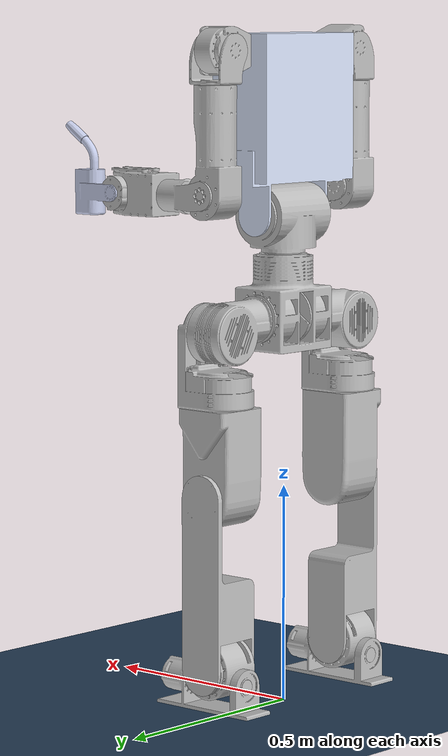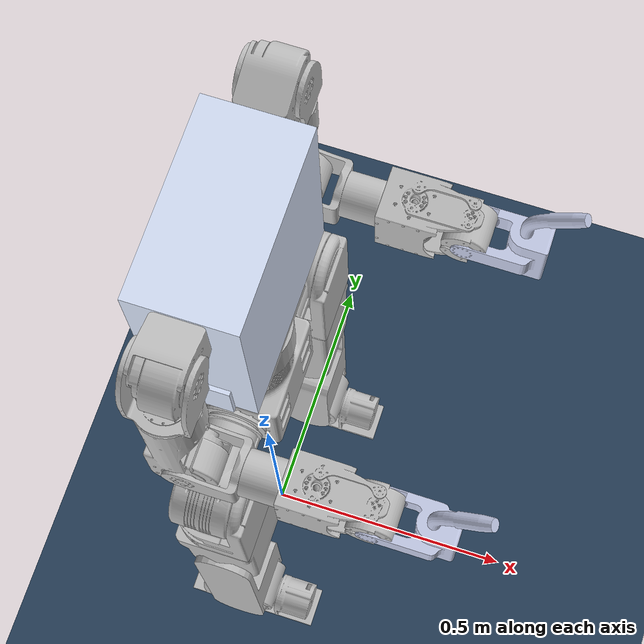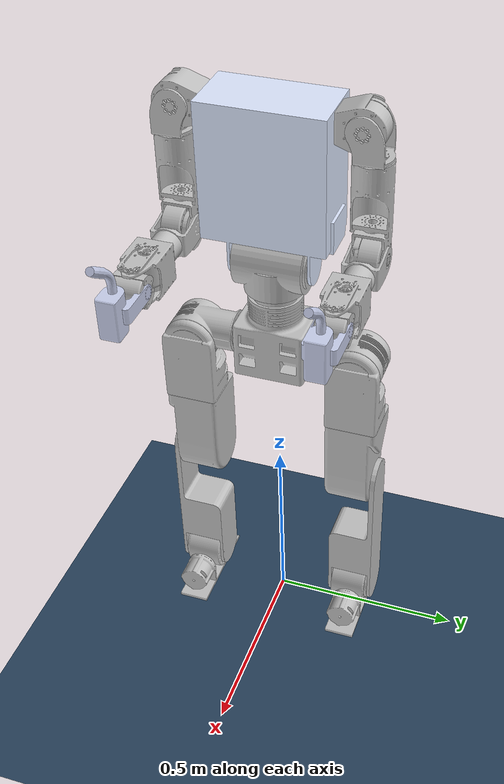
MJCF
<mujoco model="walking scene">

    <!-- Default options -->
    <compiler angle="radian" autolimits="true" />
    <option integrator="Euler" timestep="0.005" />
    <default>
        <joint armature="0.1" damping="0.1" />
        <default class="visual_only">
            <!-- visual group of 'collision' of 2 is to render -->
            <!-- All geoms with contype⁠=⁠conaffinity⁠=0 are discarded -->
            <geom type="mesh" contype="0" conaffinity="0" group="2" />
        </default>
        <default class="visual_collision">
            <!-- visual group of 'collision' of 2 is to render -->
            <geom type="mesh" solimp=".9 .99 .001" solref=".015 1" group="2" />
        </default>
        <default class="no_visual_collision">
            <!-- visual group of 'collision' of 3 is NOT to render -->
            <geom type="capsule" solimp=".9 .99 .001" solref=".015 1" group="3" />
        </default>
    </default>

  <include file="./version_1_rmd_higher_waist.xml" />

  <!-- Floor and Sky -->
  <include file="./floor.xml" />

  <!-- Table -->

  <!-- Objects to pick -->

</mujoco>

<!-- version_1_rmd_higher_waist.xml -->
<mujoco model="statue_v1_rmd">
  <compiler angle="radian" meshdir="../new_body_meshes/"/>

  <asset>
    <mesh name="pelvis_link" content_type="model/stl" file="pelvis_link.STL"/>
    <mesh name="right_hip_pitch_link" content_type="model/stl" file="right_hip_pitch_link.STL"/>
    <mesh name="right_hip_roll_link" content_type="model/stl" file="right_hip_roll_link.STL"/>
    <mesh name="right_hip_yaw_link" content_type="model/stl" file="right_hip_yaw_link.STL"/>
    <mesh name="right_knee_pitch_link" content_type="model/stl" file="right_knee_pitch_link.STL"/>
    <mesh name="right_ankle_pitch_link" content_type="model/stl" file="right_ankle_pitch_link.STL"/>
    <mesh name="right_ankle_roll_link" content_type="model/stl" file="right_ankle_roll_link.STL"/>
    <mesh name="left_hip_pitch_link" content_type="model/stl" file="left_hip_pitch_link.STL"/>
    <mesh name="left_hip_roll_link" content_type="model/stl" file="left_hip_roll_link.STL"/>
    <mesh name="left_hip_yaw_link" content_type="model/stl" file="left_hip_yaw_link.STL"/>
    <mesh name="left_knee_pitch_link" content_type="model/stl" file="left_knee_pitch_link.STL"/>
    <mesh name="left_ankle_pitch_link" content_type="model/stl" file="left_ankle_pitch_link.STL"/>
    <mesh name="left_ankle_roll_link" content_type="model/stl" file="left_ankle_roll_link.STL"/>
    <mesh name="waist_yaw_link_higher_waist" content_type="model/stl" file="waist_yaw_link_higher_waist.STL"/>
    <mesh name="waist_pitch_link_higher_waist" content_type="model/stl" file="waist_pitch_link_higher_waist.STL"/>
    <mesh name="left_shoulder_pitch_link" content_type="model/stl" file="left_shoulder_pitch_link.STL"/>
    <mesh name="left_shoulder_roll_link" content_type="model/stl" file="left_shoulder_roll_link.STL"/>
    <mesh name="left_shoulder_yaw_link" content_type="model/stl" file="left_shoulder_yaw_link.STL"/>
    <mesh name="left_elbow_pitch_link" content_type="model/stl" file="left_elbow_pitch_link.STL"/>
    <mesh name="left_wrist_roll_link" content_type="model/stl" file="left_wrist_roll_link.STL"/>
    <mesh name="left_wrist_yaw_link" content_type="model/stl" file="left_wrist_yaw_link.STL"/>
    <mesh name="left_welder" content_type="model/stl" file="left_welder.STL"/>
    <mesh name="right_shoulder_pitch_link" content_type="model/stl" file="right_shoulder_pitch_link.STL"/>
    <mesh name="right_shoulder_roll_link" content_type="model/stl" file="right_shoulder_roll_link.STL"/>
    <mesh name="right_shoulder_yaw_link" content_type="model/stl" file="right_shoulder_yaw_link.STL"/>
    <mesh name="right_elbow_pitch_link" content_type="model/stl" file="right_elbow_pitch_link.STL"/>
    <mesh name="right_wrist_roll_link" content_type="model/stl" file="right_wrist_roll_link.STL"/>
    <mesh name="right_wrist_yaw_link" content_type="model/stl" file="right_wrist_yaw_link.STL"/>
    <mesh name="right_welder" content_type="model/stl" file="right_welder.STL"/>
  </asset>

  <worldbody>
    <body name="pelvis_link" pos="0 0 0.89">
      <site name="imu" pos="0 0 0" rgba="0. 1. 0. .5"/>
      <inertial pos="0.00526 0 0.01669" quat="1 0 0 0" mass="10.09992256" diaginertia="0.06618747 0.05115608 0.04243670"/>
      <joint name="floating_base_joint" type="free"/>
      <geom type="mesh" rgba="0.752941 0.752941 0.752941 1" mesh="pelvis_link"/>
      <body name="right_hip_pitch_link" pos="0 -0.099181 0">
        <inertial pos="0.009767 -0.108078 -0.0225911" quat="0.805256 0.590033 0.00473907 -0.0583182" mass="3.19894" diaginertia="0.0090259 0.00766296 0.0059749"/>
        <joint name="right_hip_pitch_joint" pos="0 0 0" axis="0 1 0" range="-2.79253 2.79253" actuatorfrcrange="-300 300"/>
        <geom type="mesh" rgba="0.752941 0.752941 0.752941 1" mesh="right_hip_pitch_link"/>
        <body name="right_hip_roll_link" pos="0.0585 -0.1145 -0.0245">
          <inertial pos="-0.0446368 -5.448e-05 -0.112819" quat="0.939735 0.00145777 -0.341868 -0.00468018" mass="3.80163" diaginertia="0.0145448 0.0138481 0.00949202"/>
          <joint name="right_hip_roll_joint" pos="0 0 0" axis="1 0 0" range="-1.5708 0.523599" actuatorfrcrange="-300 300"/>
          <geom type="mesh" rgba="0.752941 0.752941 0.752941 1" mesh="right_hip_roll_link"/>
          <body name="right_hip_yaw_link" pos="-0.06405 0 -0.1725">
            <inertial pos="0.0107923 -0.00576204 -0.137364" quat="0.700127 0.0268518 -0.0111705 0.713426" mass="4.87641" diaginertia="0.0404295 0.0373588 0.0121049"/>
            <joint name="right_hip_yaw_joint" pos="0 0 0" axis="0 0 1" range="-2.79253 2.79253" actuatorfrcrange="-300 300"/>
            <geom type="mesh" rgba="0.752941 0.752941 0.752941 1" mesh="right_hip_yaw_link"/>
            <body name="right_knee_pitch_link" pos="0.01165 0 -0.1925">
              <inertial pos="3.24e-05 -0.0254699 -0.208579" quat="0.995949 -0.0899156 -1.58722e-05 -0.000697379" mass="2.2975" diaginertia="0.0303321 0.0285892 0.00633384"/>
              <joint name="right_knee_pitch_joint" pos="0 0 0" axis="0 1 0" range="-2.44346 2.44346" actuatorfrcrange="-300 300"/>
              <geom type="mesh" rgba="0.752941 0.752941 0.752941 1" mesh="right_knee_pitch_link"/>
              <body name="right_ankle_pitch_link" pos="0 -0.00675 -0.3895">
                <inertial pos="-0.00121625 0.00070302 -0.00122628" quat="0.423362 0.567546 0.557591 0.433299" mass="3.66062" diaginertia="0.00829794 0.00760682 0.00715014"/>
                <joint name="right_ankle_pitch_joint" pos="0 0 0" axis="0 1 0" range="-0.872665 0.698132" actuatorfrcrange="-380 380"/>
                <geom type="mesh" rgba="0.752941 0.752941 0.752941 1" mesh="right_ankle_pitch_link"/>
                <body name="right_ankle_roll_link" pos="0 -0.00025 -0.032">
                  <inertial pos="0.0352053 0 -0.0184954" quat="0.480315 0.518546 0.523791 0.475448" mass="1.77439" diaginertia="0.0146799 0.013847 0.00242826"/>
                  <joint name="right_ankle_roll_joint" pos="0 0 0" axis="1 0 0" range="-0.523599 0.523599" actuatorfrcrange="-380 380"/>
                  <geom type="mesh" rgba="0.752941 0.752941 0.752941 1" mesh="right_ankle_roll_link"/>
                </body>
              </body>
            </body>
          </body>
        </body>
      </body>
      <body name="left_hip_pitch_link" pos="0 0.097528 0">
        <inertial pos="0.00934825 0.108118 -0.0226274" quat="0.59043 0.804979 0.0581163 -0.00494066" mass="3.22601" diaginertia="0.00903678 0.00773861 0.00604603"/>
        <joint name="left_hip_pitch_joint" pos="0 0 0" axis="0 1 0" range="-2.79253 2.79253" actuatorfrcrange="-300 300"/>
        <geom type="mesh" rgba="0.752941 0.752941 0.752941 1" mesh="left_hip_pitch_link"/>
        <body name="left_hip_roll_link" pos="0.0585 0.1145 -0.0245">
          <inertial pos="-0.0448904 -2.405e-05 -0.113779" quat="0.937369 0.000745623 -0.34833 -0.0022655" mass="3.72492" diaginertia="0.0140971 0.0134647 0.00928204"/>
          <joint name="left_hip_roll_joint" pos="0 0 0" axis="1 0 0" range="-0.523599 1.5708" actuatorfrcrange="-300 300"/>
          <geom type="mesh" rgba="0.752941 0.752941 0.752941 1" mesh="left_hip_roll_link"/>
          <body name="left_hip_yaw_link" pos="-0.06405 0 -0.1725">
            <inertial pos="0.0108726 0.00572071 -0.137475" quat="0.71197 -0.0110728 0.0269256 0.701606" mass="4.86182" diaginertia="0.0401577 0.0371292 0.0120494"/>
            <joint name="left_hip_yaw_joint" pos="0 0 0" axis="0 0 1" range="-2.79253 2.79253" actuatorfrcrange="-300 300"/>
            <geom type="mesh" rgba="0.752941 0.752941 0.752941 1" mesh="left_hip_yaw_link"/>
            <body name="left_knee_pitch_link" pos="0.01165 0 -0.1925">
              <inertial pos="3.23e-05 0.0254783 -0.208547" quat="0.995948 0.0899234 -1.56886e-05 0.000694556" mass="2.29798" diaginertia="0.0303473 0.0286044 0.00633421"/>
              <joint name="left_knee_pitch_joint" pos="0 0 0" axis="0 1 0" range="-2.44346 2.44346" actuatorfrcrange="-300 300"/>
              <geom type="mesh" rgba="0.752941 0.752941 0.752941 1" mesh="left_knee_pitch_link"/>
              <body name="left_ankle_pitch_link" pos="0 0.00675 -0.3895">
                <inertial pos="-0.00126805 -0.00070303 -0.00127762" quat="0.435651 0.558239 0.561702 0.427864" mass="3.6606" diaginertia="0.00829674 0.00761539 0.00714071"/>
                <joint name="left_ankle_pitch_joint" pos="0 0 0" axis="0 1 0" range="-0.872665 0.698132" actuatorfrcrange="-380 380"/>
                <geom type="mesh" rgba="0.752941 0.752941 0.752941 1" mesh="left_ankle_pitch_link"/>
                <body name="left_ankle_roll_link" pos="0 0.00025 -0.032">
                  <inertial pos="0.0352053 0 -0.0184954" quat="0.480315 0.518546 0.523791 0.475448" mass="1.77439" diaginertia="0.0146799 0.013847 0.00242826"/>
                  <joint name="left_ankle_roll_joint" pos="0 0 0" axis="1 0 0" range="-0.523599 0.523599" actuatorfrcrange="-380 380"/>
                  <geom type="mesh" rgba="0.752941 0.752941 0.752941 1" mesh="left_ankle_roll_link"/>
                </body>
              </body>
            </body>
          </body>
        </body>
      </body>
      <body name="waist_yaw_link" pos="0.00405 0 0.1455">
        <inertial pos="3.864e-05 0 0.0810985" quat="0.707197 0.707015 0.00128785 -0.000452774" mass="6.68054" diaginertia="0.0294776 0.0286582 0.0188451"/>
        <joint name="waist_yaw_joint" pos="0 0 0" axis="0 0 1" range="-2.79253 2.79253" actuatorfrcrange="-300 300"/>
        <geom type="mesh" rgba="0.752941 0.752941 0.752941 1" mesh="waist_yaw_link_higher_waist"/>
        <body name="waist_pitch_link" pos="0 0 0.085">
          <inertial pos="0 0 0.237856" mass="35.8193" diaginertia="0.621001 0.420973 0.350427"/>
          <joint name="waist_pitch_joint" pos="0 0 0" axis="0 1 0" range="-0.785398 0.785398" actuatorfrcrange="-600 600"/>
          <geom type="mesh" rgba="0.866667 0.909804 1 1" mesh="waist_pitch_link_higher_waist"/>
          <body name="left_shoulder_pitch_link" pos="0 0.1505 0.37">
            <inertial pos="-0.00037831 0.0541044 -0.00035447" quat="0.737726 0.674532 0.00554175 0.0271508" mass="1.242" diaginertia="0.00200618 0.00162576 0.00154715"/>
            <joint name="left_shoulder_pitch_joint" pos="0 0 0" axis="0 1 0" range="-2.96 2.96" actuatorfrcrange="-300 300"/>
            <geom type="mesh" rgba="0.75294 0.75294 0.75294 1" mesh="left_shoulder_pitch_link"/>
            <body name="left_shoulder_roll_link" pos="-0.00124976 0.065 0">
              <inertial pos="6.771e-05 0.00940829 -0.0335508" quat="0.562993 0.427343 0.565857 0.424527" mass="0.465" diaginertia="0.0012239 0.000883435 0.000771196"/>
              <joint name="left_shoulder_roll_joint" pos="0 0 0" axis="1 0 0" range="-0.52 2.26" actuatorfrcrange="-300 300"/>
              <geom type="mesh" rgba="0.75294 0.75294 0.75294 1" mesh="left_shoulder_roll_link"/>
              <body name="left_shoulder_yaw_link" pos="0.000999764 0.0147 -0.073">
                <inertial pos="-0.00290128 -0.00027432 -0.144338" quat="0.781523 0.00134876 -0.000410432 0.623875" mass="2.741" diaginertia="0.0281465 0.0280058 0.00332486"/>
                <joint name="left_shoulder_yaw_joint" pos="0 0 0" axis="0 0 1" range="-2.62 2.62" actuatorfrcrange="-150 150"/>
                <geom type="mesh" rgba="0.75294 0.75294 0.75294 1" mesh="left_shoulder_yaw_link"/>
                <body name="left_elbow_pitch_link" pos="0.00700454 0 -0.243">
                  <inertial pos="0.084937 0.00103543 -0.0054165" quat="-0.0166968 0.691844 0.0301983 0.721222" mass="0.995" diaginertia="0.00227415 0.00195837 0.000977239"/>
                  <joint name="left_elbow_pitch_joint" pos="0 0 0" axis="0 1 0" range="-1.0472 2.0944" actuatorfrcrange="-300 300"/>
                  <geom type="mesh" rgba="0.75294 0.75294 0.75294 1" mesh="left_elbow_pitch_link"/>
                  <body name="left_wrist_roll_link" pos="0.1405 0 -0.006">
                    <inertial pos="0.0536056 0 0.00568016" quat="0.419294 0.569379 0.569379 0.419294" mass="1.382" diaginertia="0.00307524 0.00234668 0.00191093"/>
                    <joint name="left_wrist_roll_joint" pos="0 0 0" axis="1 0 0" range="-2.0944 2.0944" actuatorfrcrange="-80 80"/>
                    <geom type="mesh" rgba="0.75294 0.75294 0.75294 1" mesh="left_wrist_roll_link"/>
                    <body name="left_wrist_yaw_link" pos="0.137 0 0">
                      <inertial pos="-0.00173065 -6.577e-05 -4.363e-05" quat="0.707125 0.707087 -0.00138126 0.00038794" mass="0.799" diaginertia="0.000649201 0.00058925 0.00058513"/>
                      <joint name="left_wrist_yaw_joint" pos="0 0 0" axis="0 0 1" range="-1.39 1.39" actuatorfrcrange="-80 80"/>
                      <geom type="mesh" rgba="0.75294 0.75294 0.75294 1" mesh="left_wrist_yaw_link"/>
                      <body name="left_wrist_pitch_link">
                        <inertial pos="0.0900671 1.807e-05 0.0104449" quat="0.68927 -0.102971 -0.100911 0.710014" mass="0.2" diaginertia="0.0005323 0.000475254 0.000192376"/>
                        <joint name="left_wrist_pitch_joint" pos="0 0 0" axis="0 -1 0" range="-0.785 0.785" actuatorfrcrange="-80 80"/>
                        <geom type="mesh" rgba="0.79216 0.81961 0.93333 1" mesh="left_welder"/>
                      </body>
                    </body>
                  </body>
                </body>
              </body>
            </body>
          </body>
          <body name="right_shoulder_pitch_link" pos="0 -0.1505 0.37">
            <inertial pos="-0.00037831 -0.0541044 0.00035447" quat="0.737726 0.674532 -0.00554175 -0.0271508" mass="1.242" diaginertia="0.00200618 0.00162576 0.00154715"/>
            <joint name="right_shoulder_pitch_joint" pos="0 0 0" axis="0 -1 0" range="-2.96 2.96" actuatorfrcrange="-300 300"/>
            <geom type="mesh" rgba="0.75294 0.75294 0.75294 1" mesh="right_shoulder_pitch_link"/>
            <body name="right_shoulder_roll_link" pos="-0.00124976 -0.065 0">
              <inertial pos="0.00145192 -0.00937651 -0.0334292" quat="0.41695 0.572578 0.434762 0.556137" mass="0.475" diaginertia="0.00124961 0.000901245 0.000787432"/>
              <joint name="right_shoulder_roll_joint" pos="0 0 0" axis="1 0 0" range="-2.26 0.52" actuatorfrcrange="-300 300"/>
              <geom type="mesh" rgba="0.75294 0.75294 0.75294 1" mesh="right_shoulder_roll_link"/>
              <body name="right_shoulder_yaw_link" pos="0 -0.0147 -0.073">
                <inertial pos="-0.00261341 -2e-06 -0.144303" quat="0.460893 0.00183533 0.00184553 0.887452" mass="2.737" diaginertia="0.028454 0.0280355 0.00333414"/>
                <joint name="right_shoulder_yaw_joint" pos="0 0 0" axis="0 0 1" range="-2.62 2.62" actuatorfrcrange="-150 150"/>
                <geom type="mesh" rgba="0.75294 0.75294 0.75294 1" mesh="right_shoulder_yaw_link"/>
                <body name="right_elbow_pitch_link" pos="0.00700897 -0.000319256 -0.243">
                  <inertial pos="0.0851268 -0.00103939 -0.00542091" quat="0.0167591 0.69185 -0.0302942 0.721211" mass="0.991" diaginertia="0.00225517 0.00194373 0.000970026"/>
                  <joint name="right_elbow_pitch_joint" pos="0 0 0" axis="0 -1 0" range="-2.0944 1.0472" actuatorfrcrange="-300 300"/>
                  <geom type="mesh" rgba="0.75294 0.75294 0.75294 1" mesh="right_elbow_pitch_link"/>
                  <body name="right_wrist_roll_link" pos="0.1405 0 -0.006">
                    <inertial pos="0.053474 0 0.00562146" quat="0.420376 0.568602 0.568385 0.420612" mass="1.382" diaginertia="0.0030721 0.00234397 0.00191124"/>
                    <joint name="right_wrist_roll_joint" pos="0 0 0" axis="1 0 0" range="-2.0944 2.0944" actuatorfrcrange="-80 80"/>
                    <geom type="mesh" rgba="0.75294 0.75294 0.75294 1" mesh="right_wrist_roll_link"/>
                    <body name="right_wrist_yaw_link" pos="0.137 0 0">
                      <inertial pos="-0.00173065 -6.577e-05 -4.363e-05" quat="0.707125 0.707087 -0.00138126 0.00038794" mass="0.799" diaginertia="0.000649201 0.00058925 0.00058513"/>
                      <joint name="right_wrist_yaw_joint" pos="0 0 0" axis="0 0 1" range="-1.39 1.39" actuatorfrcrange="-80 80"/>
                      <geom type="mesh" rgba="0.75294 0.75294 0.75294 1" mesh="right_wrist_yaw_link"/>
                      <body name="right_wrist_pitch_link">
                        <inertial pos="0.0900671 0.001018 0.010444" quat="0.68927 -0.102971 -0.100911 0.710014" mass="0.2" diaginertia="0.0005323 0.000475254 0.000192376"/>
                        <joint name="right_wrist_pitch_joint" pos="0 0 0" axis="0 1 0" range="-0.785 0.785" actuatorfrcrange="-80 80"/>
                        <geom type="mesh" rgba="0.79216 0.81961 0.93333 1" mesh="right_welder"/>
                      </body>
                    </body>
                  </body>
                </body>
              </body>
            </body>
          </body>
        </body>
      </body>
    </body>
  </worldbody>

  <actuator>
    <position name="left_hip_pitch_joint"       joint="left_hip_pitch_joint"       ctrllimited="true" kp="150" kv="5" ctrlrange="-140 140" />
    <position name="left_hip_roll_joint"        joint="left_hip_roll_joint"        ctrllimited="true" kp="150" kv="5" ctrlrange="-140 140" />
    <position name="left_hip_yaw_joint"         joint="left_hip_yaw_joint"         ctrllimited="true" kp="200" kv="5" ctrlrange="-140 140" />
    <position name="left_knee_pitch_joint"      joint="left_knee_pitch_joint"      ctrllimited="true" kp="200" kv="5" ctrlrange="-140 140" />
    <position name="left_ankle_pitch_joint"     joint="left_ankle_pitch_joint"     ctrllimited="true" kp=" 50" kv="4" ctrlrange="-140 140" />
    <position name="left_ankle_roll_joint"      joint="left_ankle_roll_joint"      ctrllimited="true" kp=" 50" kv="4" ctrlrange="-140 140" />
    <position name="right_hip_pitch_joint"      joint="right_hip_pitch_joint"      ctrllimited="true" kp="150" kv="5" ctrlrange="-140 140" />
    <position name="right_hip_roll_joint"       joint="right_hip_roll_joint"       ctrllimited="true" kp="150" kv="5" ctrlrange="-140 140" />
    <position name="right_hip_yaw_joint"        joint="right_hip_yaw_joint"        ctrllimited="true" kp="200" kv="5" ctrlrange="-140 140" />
    <position name="right_knee_pitch_joint"     joint="right_knee_pitch_joint"     ctrllimited="true" kp="200" kv="5" ctrlrange="-140 140" />
    <position name="right_ankle_pitch_joint"    joint="right_ankle_pitch_joint"    ctrllimited="true" kp=" 50" kv="4" ctrlrange="-140 140" />
    <position name="right_ankle_roll_joint"     joint="right_ankle_roll_joint"     ctrllimited="true" kp=" 50" kv="4" ctrlrange="-140 140" />
    <position name="waist_yaw_joint"            joint="waist_yaw_joint"            ctrllimited="true" kp="150" kv="5" ctrlrange="-140 140" />
    <position name="waist_pitch_joint"          joint="waist_pitch_joint"          ctrllimited="true" kp="150" kv="5" ctrlrange="-140 140" />
    <position name="left_shoulder_pitch_joint"  joint="left_shoulder_pitch_joint"  ctrllimited="true" kp="100" kv="5" ctrlrange="-140 140" />
    <position name="left_shoulder_roll_joint"   joint="left_shoulder_roll_joint"   ctrllimited="true" kp="100" kv="5" ctrlrange="-140 140" />
    <position name="left_shoulder_yaw_joint"    joint="left_shoulder_yaw_joint"    ctrllimited="true" kp="100" kv="5" ctrlrange=" -50  50" />
    <position name="left_elbow_pitch_joint"     joint="left_elbow_pitch_joint"     ctrllimited="true" kp="100" kv="5" ctrlrange="-140 140" />
    <position name="left_wrist_roll_joint"      joint="left_wrist_roll_joint"      ctrllimited="true" kp=" 25" kv="4" ctrlrange=" -25  25" />
    <position name="left_wrist_pitch_joint"     joint="left_wrist_pitch_joint"     ctrllimited="true" kp=" 25" kv="4" ctrlrange=" -25  25" />
    <position name="left_wrist_yaw_joint"       joint="left_wrist_yaw_joint"       ctrllimited="true" kp=" 25" kv="4" ctrlrange=" -25  25" />
    <position name="right_shoulder_pitch_joint" joint="right_shoulder_pitch_joint" ctrllimited="true" kp="100" kv="5" ctrlrange="-140 140" />
    <position name="right_shoulder_roll_joint"  joint="right_shoulder_roll_joint"  ctrllimited="true" kp="100" kv="5" ctrlrange="-140 140" />
    <position name="right_shoulder_yaw_joint"   joint="right_shoulder_yaw_joint"   ctrllimited="true" kp="100" kv="5" ctrlrange=" -50  50" />
    <position name="right_elbow_pitch_joint"    joint="right_elbow_pitch_joint"    ctrllimited="true" kp="100" kv="5" ctrlrange="-140 140" />
    <position name="right_wrist_roll_joint"     joint="right_wrist_roll_joint"     ctrllimited="true" kp=" 25" kv="4" ctrlrange=" -25  25" />
    <position name="right_wrist_pitch_joint"    joint="right_wrist_pitch_joint"    ctrllimited="true" kp=" 25" kv="4" ctrlrange=" -25  25" />
    <position name="right_wrist_yaw_joint"      joint="right_wrist_yaw_joint"      ctrllimited="true" kp=" 25" kv="4" ctrlrange=" -25  25" />
  </actuator>

  <contact>

    <!-- Left leg parent-child -->
    <exclude body1="pelvis_link" body2="left_hip_pitch_link" />
    <exclude body1="left_hip_pitch_link" body2="left_hip_roll_link" />
    <exclude body1="left_hip_roll_link"  body2="left_hip_yaw_link" />
    <exclude body1="left_hip_yaw_link"   body2="left_knee_pitch_link" />
    <exclude body1="left_knee_pitch_link" body2="left_ankle_pitch_link" />
    <exclude body1="left_knee_pitch_link" body2="left_ankle_roll_link" />
    <exclude body1="left_ankle_pitch_link" body2="left_ankle_roll_link" />

    <!-- Right leg parent-child -->
    <exclude body1="pelvis_link" body2="right_hip_pitch_link" />
    <exclude body1="right_hip_pitch_link" body2="right_hip_roll_link" />
    <exclude body1="right_hip_roll_link"  body2="right_hip_yaw_link" />
    <exclude body1="right_hip_yaw_link"   body2="right_knee_pitch_link" />
    <exclude body1="right_knee_pitch_link" body2="right_ankle_pitch_link" />
    <exclude body1="right_knee_pitch_link" body2="right_ankle_roll_link" />
    <exclude body1="right_ankle_pitch_link" body2="right_ankle_roll_link" />

    <exclude body1="pelvis_link" body2="waist_yaw_link" />
    <exclude body1="waist_yaw_link" body2="waist_pitch_link" />

    <exclude body1="right_wrist_roll_link" body2="right_wrist_yaw_link" />
    <exclude body1="right_wrist_roll_link" body2="right_wrist_pitch_link" />
    <exclude body1="right_wrist_yaw_link" body2="right_wrist_pitch_link" />

    <exclude body1="left_wrist_roll_link" body2="left_wrist_yaw_link" />
    <exclude body1="left_wrist_roll_link" body2="left_wrist_pitch_link" />
    <exclude body1="left_wrist_yaw_link" body2="left_wrist_pitch_link" />
  </contact>

  <sensor>
    <gyro name="gyro" site="imu"/>
    <accelerometer name="accelerometer" site="imu"/>
  </sensor>

</mujoco>

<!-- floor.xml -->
<mujoco model="floor and sky">

    <visual>
        <headlight diffuse="0.6 0.6 0.6" ambient="0.3 0.3 0.3" specular="0 0 0" />
        <rgba haze="0.15 0.25 0.35 1" />
    </visual>

    <asset>
        <texture name="grid" type="2d" builtin="checker" rgb1=".1 .2 .3" rgb2=".2 .3 .4" width="300" height="300"/>
        <material name="grid" texture="grid" texrepeat="8 8" reflectance=".2"/>
    </asset>

    <worldbody>
        <light pos="1 -1 1.5" dir="-1 1 -1" diffuse="0.5 0.5 0.5" directional="true" />
        <geom name="floor" group="1" size="0 0 0.05" type="plane" material="grid" />
    </worldbody>

</mujoco>
